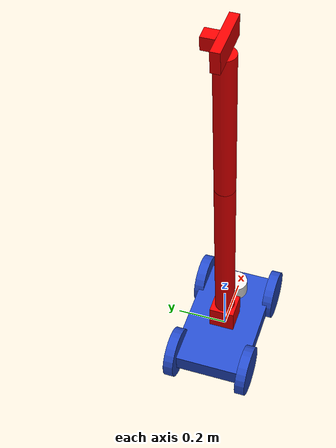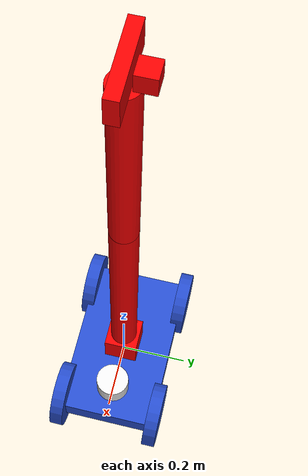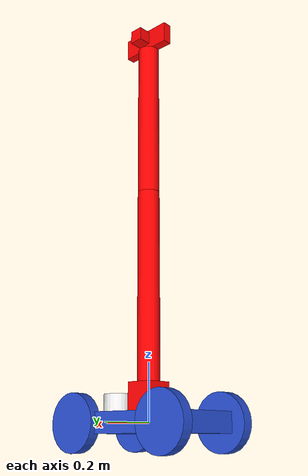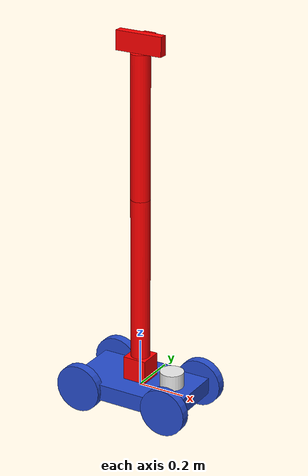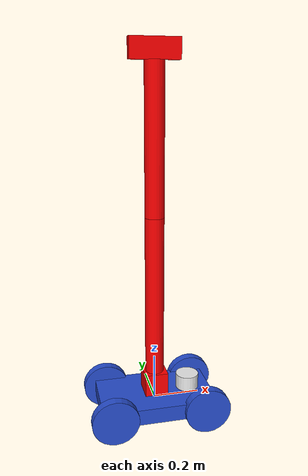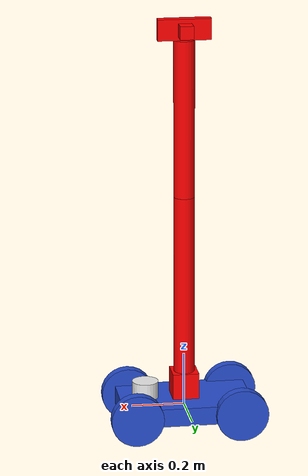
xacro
<?xml version="1.0" ?>
<robot name="my_robot" xmlns:xacro="https://www.ros.org/wiki/xacro" >

 <xacro:include filename="$(find robot_urdf)/urdf/materials.xacro" />
 <xacro:include filename="$(find robot_urdf)/urdf/my_robot.gazebo" />

 <xacro:macro name="cylinder_inertia" params="mass r l">
    <inertia ixx="${mass*(3*r*r+l*l)/12}" ixy = "0" ixz = "0"
                iyy="${mass*(3*r*r+l*l)/12}" iyz = "0" izz="${mass*(r*r)/2}" />
 </xacro:macro>

    <xacro:macro name="link_wheel" params="name">
        <link name="${name}">
            <inertial>
              <mass value="0.2"/>
              <origin rpy="0 1.5707 1.5707" xyz="0 0 0"/>
              <inertia ixx="0.000526666666667" ixy="0" ixz="0" iyy="0.000526666666667" iyz="0" izz="0.001"/>
            </inertial>
            <collision name="link_right_wheel_collision">
              <origin rpy="0 1.5707 1.5707" xyz="0 0 0"/>
              <geometry>
                <cylinder length="0.04" radius="0.1"/>
              </geometry>
            </collision>
            <visual name="${name}_visual">
              <origin rpy="0 1.5707 1.5707" xyz="0 0 0"/>
              <geometry>
                <cylinder length="0.04" radius="0.1"/>
              </geometry>
            </visual>
        </link>
    </xacro:macro>

    <xacro:macro name="joint_wheel" params="name child origin_xyz">
      <joint name="${name}" type="continuous">
        <origin rpy="0 0 0" xyz="${origin_xyz}"/>
        <child link="${child}"/>
        <parent link="base_link"/>
        <axis rpy="0 0 0" xyz="0 1 0"/>
        <limit effort="10000" velocity="1000"/>
        <joint_properties damping="1.0" friction="1.0"/>
      </joint>
    </xacro:macro>

    <link name="base_link">
        <!-- pose and inertial -->
        <pose>0 0 0.1 0 0 0</pose>

<inertial>
            <mass value="5" />
            <origin rpy="0 0 0" xyz="0 0 0.1" />
            <inertia ixx="0.0395416666667" ixy="0" ixz="0" iyy="0.106208333333" iyz="0" izz="0.106208333333" />
        </inertial>

        <collision name="collision_chassis">
            <geometry>
                <box size="0.5 0.3 0.07" />
            </geometry>
        </collision>
        <visual>
            <origin rpy="0 0 0" xyz="0 0 0" />
            <geometry>
                <box size="0.5 0.3 0.07" />
            </geometry>
            <material name="blue" />
        </visual>
    </link>

  <!-- Create wheels -->

  <xacro:link_wheel name="link_right_wheel" />
  <xacro:link_wheel name="link_left_wheel" />
  <xacro:link_wheel name="link_frontright_wheel" />
  <xacro:link_wheel name="link_frontleft_wheel" />
  <xacro:joint_wheel name="joint_right_wheel"  child="link_right_wheel"  origin_xyz="-0.20 0.15 0"  />
  <xacro:joint_wheel name="joint_left_wheel"   child="link_left_wheel"   origin_xyz="-0.20 -0.15 0"  />
  <xacro:joint_wheel name="joint_frontright_wheel"  child="link_frontright_wheel"  origin_xyz="0.20 0.15 0"  />
  <xacro:joint_wheel name="joint_frontleft_wheel"   child="link_frontleft_wheel"   origin_xyz="0.20 -0.15 0"  />

   <link name="laser">
    <inertial>
      <origin xyz="0 0 0" rpy="0 0 0" />
      <mass value="1" />
      <xacro:cylinder_inertia mass="1" r="0.05" l="0.1" />
    </inertial>

    <visual>
      <origin xyz="0 0 0" rpy="0 0 0" />
      <geometry>
        <cylinder radius="0.05" length="0.1"/>
      </geometry>
      <material name="white" />
    </visual>

    <collision>
      <origin xyz="0 0 0" rpy="0 0 0"/>
      <geometry>
        <cylinder radius="0.05" length="0.1"/>
      </geometry>
    </collision>
  </link>

  <joint name="joint_laser" type="fixed">
    <origin xyz="0.15 0 0.05" rpy="0 0 0"/>
    <parent link="base_link"/>
    <child link="laser"/>
  </joint>

    <!--arm definition -->
    <link name="arm_base_link">

<inertial>
            <mass value="0.1" />
            <origin rpy="0 0 0" xyz="0 0 0" />
            <inertia ixx="0.0000416666667" ixy="0" ixz="0" iyy="0.0000416666667" iyz="0" izz="0.0000416666667" />
        </inertial>

        <collision>
            <origin rpy="0 0 0" xyz="0 0 0" />
            <geometry>
                <box size="0.1 0.1 0.1" />
            </geometry>
        </collision>
        <visual>
            <origin rpy="0 0 0" xyz="0 0 0" />
            <geometry>
                <box size="0.1 0.1 0.1" />
            </geometry>
            <material name="red" />
        </visual>
    </link>
    <joint name="arm_base_to_base" type="fixed">
        <origin rpy="0 0 0" xyz="0 0 0.085" />
        <parent link="base_link" />
        <child link="arm_base_link" />
    </joint>
    <link name="arm_link_01">

<inertial>
            <mass value="0.025" />
            <origin rpy="0 0 0" xyz="0 0 0" />
            <inertia ixx="0.000010279" ixy="0" ixz="0" iyy="0.000010279" iyz="0" izz="0.000007225" />
        </inertial>

        <collision>
            <origin rpy="0 0 0" xyz="0 0 0.30" />
            <geometry>
                <cylinder length="0.70" radius="0.04" />
            </geometry>
        </collision>
        <visual>
            <origin rpy="0 0 0" xyz="0 0 0.30" />
            <geometry>
                <cylinder length="0.70" radius="0.04" />
            </geometry>
            <material name="red" />
        </visual>
    </link>
    <joint name="arm_joint_01" type="revolute">
        <axis xyz="0 0 1" />
        <limit effort="1000.0" lower="-3.14" upper="3.14" velocity="0.2" />
        <origin rpy="0 0 0" xyz="0 0 0.09" />
        <parent link="arm_base_link" />
        <child link="arm_link_01" />
    </joint>
    <link name="arm_link_02">

<inertial>
            <mass value="0.025" />
            <origin rpy="0 0 0" xyz="0 0 0" />
            <inertia ixx="0.000010279" ixy="0" ixz="0" iyy="0.000010279" iyz="0" izz="0.000007225" />
        </inertial>

        <collision>
            <origin rpy="0 0 0" xyz="0 0 0.30" />
            <geometry>
                <cylinder length="0.6" radius="0.04" />
            </geometry>
        </collision>
        <visual>
            <origin rpy="0 0 0" xyz="0 0 0.30" />
            <geometry>
                <cylinder length="0.6" radius="0.04" />
            </geometry>
            <material name="red" />
        </visual>
    </link>
    <joint name="arm_joint_02" type="revolute">
        <axis xyz="1 0 0" />
        <limit effort="1000.0" lower="-1.8" upper="1.8" velocity="0.2" />
        <origin rpy="0 0 0" xyz="0 0 0.65" />
        <parent link="arm_link_01" />
        <child link="arm_link_02" />
    </joint>

    <link name="arm_link_03">

	<inertial>
            <mass value="0.025" />
            <origin rpy="0 0 0" xyz="0 0 0" />
            <inertia ixx="0.000010279" ixy="0" ixz="0" iyy="0.000010279" iyz="0" izz="0.000007225" />
        </inertial>

        <collision>
            <origin rpy="0 0 1.57" xyz="0 0 0.04" />
            <geometry>
                <box size="0.034 0.2 0.08" />
            </geometry>
        </collision>
        <visual>
            <origin rpy="0 0 1.57" xyz="0 0 0.04" />
            <geometry>
                <box size="0.034 0.2 0.08" />
            </geometry>
            <material name="red" />
        </visual>
    </link>
    <joint name="arm_joint_03" type="revolute">
        <axis xyz="1 0 0" />
        <limit effort="1000.0" lower="-1.4" upper="1.4" velocity="0.5" />
        <origin rpy="0 0 0" xyz="0 0 0.60" />
        <parent link="arm_link_02" />
        <child link="arm_link_03" />
    </joint>
    <link name="camera_link">
        <collision>
            <origin rpy="0 0 0" xyz="0 0 0" />
            <geometry>
                <box size="0.05 0.05 0.05" />
            </geometry>
        </collision>
        <visual>
            <origin rpy="0 0 0" xyz="0 0 0" />
            <geometry>
                <box size="0.05 0.05 0.05" />
            </geometry>
            <material name="red">
                <color rgba="1 0 0 1" />
            </material>
        </visual>

<inertial>
            <mass value="1e-5" />
            <origin rpy="0 0 0" xyz="0 0 0" />
            <inertia ixx="1e-6" ixy="0" ixz="0" iyy="1e-6" iyz="0" izz="1e-6" />
        </inertial>

    </link>
    <joint name="camera_joint" type="fixed">
        <axis xyz="0 0 0" />
        <origin rpy="0 0 1.57" xyz="0 0.048 0.04" />
        <parent link="arm_link_03" />
        <child link="camera_link" />
    </joint>

<transmission name="arm_joint_01_trans">
	<type>transmission_interface/SimpleTransmission</type>
	<joint name="arm_joint_01">
		<hardwareInterface>hardware_interface/EffortJointInterface</hardwareInterface>
	</joint>
	<actuator name="motor1">
		<hardwareInterface>hardware_interface/EffortJointInterface</hardwareInterface>
		<mechanicalInterface>1</mechanicalInterface>
	</actuator>
</transmission>

<transmission name="arm_joint_02_trans">
	<type>transmission_interface/SimpleTransmission</type>
	<joint name="arm_joint_02">
		<hardwareInterface>hardware_interface/EffortJointInterface</hardwareInterface>
	</joint>
	<actuator name="motor2">
		<hardwareInterface>hardware_interface/EffortJointInterface</hardwareInterface>
		<mechanicalInterface>1</mechanicalInterface>
	</actuator>
</transmission>

<transmission name="arm_joint_03_trans">
	<type>transmission_interface/SimpleTransmission</type>
	<joint name="arm_joint_03">
		<hardwareInterface>hardware_interface/EffortJointInterface</hardwareInterface>
	</joint>
	<actuator name="motor3">
		<hardwareInterface>hardware_interface/EffortJointInterface</hardwareInterface>
		<mechanicalInterface>1</mechanicalInterface>
	</actuator>
</transmission>

</robot>
